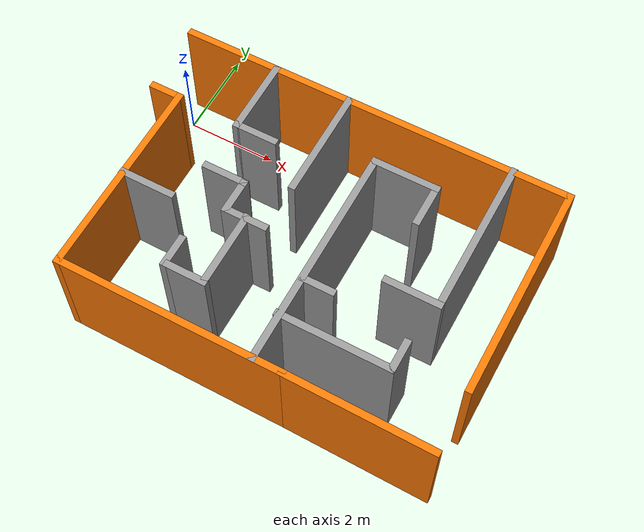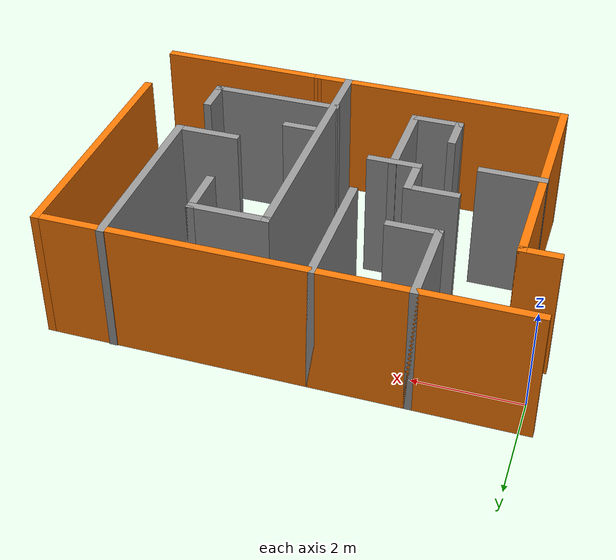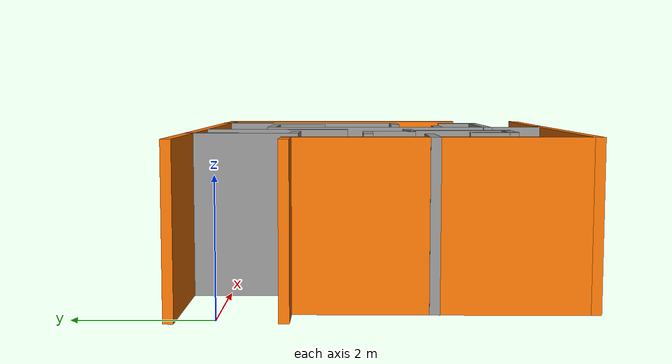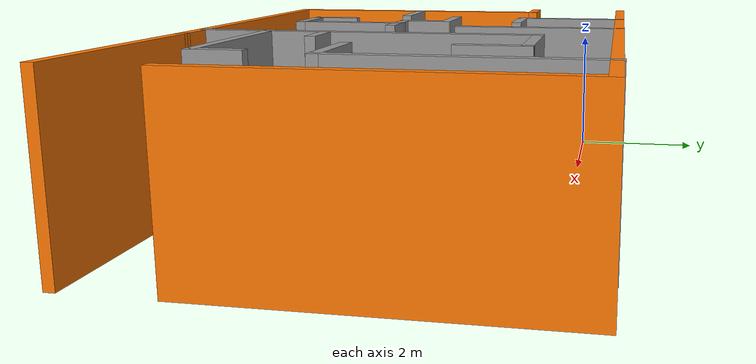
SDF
<?xml version='1.0'?>
<sdf version='1.7'>
  <model name='maze_world'>
    <pose>4.13787 -2.34255 0 0 -0 0</pose>
    <link name='Wall_12'>
      <collision name='Wall_12_Collision'>
        <geometry>
          <box>
            <size>8.75 0.15 2.5</size>
          </box>
        </geometry>
        <pose>0 0 1.25 0 -0 0</pose>
      </collision>
      <visual name='Wall_12_Visual'>
        <pose>0 0 1.25 0 -0 0</pose>
        <geometry>
          <box>
            <size>8.75 0.15 2.5</size>
          </box>
        </geometry>
        <material>
          <script>
            <uri>file://media/materials/scripts/gazebo.material</uri>
            <name>Gazebo/Grey</name>
          </script>
          <ambient>0.996078 0.47451 0.0196078 1</ambient>
        </material>
        <meta>
          <layer>0</layer>
        </meta>
      </visual>
      <pose>-0 2.96607 0 0 -0 0</pose>
    </link>
    <link name='Wall_13'>
      <collision name='Wall_13_Collision'>
        <geometry>
          <box>
            <size>4.75 0.15 2.5</size>
          </box>
        </geometry>
        <pose>0 0 1.25 0 -0 0</pose>
      </collision>
      <visual name='Wall_13_Visual'>
        <pose>0 0 1.25 0 -0 0</pose>
        <geometry>
          <box>
            <size>4.75 0.15 2.5</size>
          </box>
        </geometry>
        <material>
          <script>
            <uri>file://media/materials/scripts/gazebo.material</uri>
            <name>Gazebo/Grey</name>
          </script>
          <ambient>0.996078 0.47451 0.0196078 1</ambient>
        </material>
        <meta>
          <layer>0</layer>
        </meta>
      </visual>
      <pose>4.3 0.666072 0 0 -0 -1.5708</pose>
    </link>
    <link name='Wall_15'>
      <collision name='Wall_15_Collision'>
        <geometry>
          <box>
            <size>1.75 0.15 2.5</size>
          </box>
        </geometry>
        <pose>0 0 1.25 0 -0 0</pose>
      </collision>
      <visual name='Wall_15_Visual'>
        <pose>0 0 1.25 0 -0 0</pose>
        <geometry>
          <box>
            <size>1.75 0.15 2.5</size>
          </box>
        </geometry>
        <material>
          <script>
            <uri>file://media/materials/scripts/gazebo.material</uri>
            <name>Gazebo/Grey</name>
          </script>
          <ambient>0.180392 0.203922 0.211765 1</ambient>
        </material>
        <meta>
          <layer>0</layer>
        </meta>
      </visual>
      <pose>-2.26203 2.16607 0 0 -0 -1.5708</pose>
    </link>
    <link name='Wall_16'>
      <collision name='Wall_16_Collision'>
        <geometry>
          <box>
            <size>1 0.15 2.5</size>
          </box>
        </geometry>
        <pose>0 0 1.25 0 -0 0</pose>
      </collision>
      <visual name='Wall_16_Visual'>
        <pose>0 0 1.25 0 -0 0</pose>
        <geometry>
          <box>
            <size>1 0.15 2.5</size>
          </box>
        </geometry>
        <material>
          <script>
            <uri>file://media/materials/scripts/gazebo.material</uri>
            <name>Gazebo/Grey</name>
          </script>
          <ambient>0.180392 0.203922 0.211765 1</ambient>
        </material>
        <meta>
          <layer>0</layer>
        </meta>
      </visual>
      <pose>-1.83703 1.36607 0 0 -0 0</pose>
    </link>
    <link name='Wall_18'>
      <collision name='Wall_18_Collision'>
        <geometry>
          <box>
            <size>1 0.15 2.5</size>
          </box>
        </geometry>
        <pose>0 0 1.25 0 -0 0</pose>
      </collision>
      <visual name='Wall_18_Visual'>
        <pose>0 0 1.25 0 -0 0</pose>
        <geometry>
          <box>
            <size>1 0.15 2.5</size>
          </box>
        </geometry>
        <material>
          <script>
            <uri>file://media/materials/scripts/gazebo.material</uri>
            <name>Gazebo/Grey</name>
          </script>
          <ambient>0.180392 0.203922 0.211765 1</ambient>
        </material>
        <meta>
          <layer>0</layer>
        </meta>
      </visual>
      <pose>-1.86745 0.228497 0 0 -0 0</pose>
    </link>
    <link name='Wall_19'>
      <collision name='Wall_19_Collision'>
        <geometry>
          <box>
            <size>0.824155 0.15 2.5</size>
          </box>
        </geometry>
        <pose>0 0 1.25 0 -0 0</pose>
      </collision>
      <visual name='Wall_19_Visual'>
        <pose>0 0 1.25 0 -0 0</pose>
        <geometry>
          <box>
            <size>0.824155 0.15 2.5</size>
          </box>
        </geometry>
        <material>
          <script>
            <uri>file://media/materials/scripts/gazebo.material</uri>
            <name>Gazebo/Grey</name>
          </script>
          <ambient>0.180392 0.203922 0.211765 1</ambient>
        </material>
        <meta>
          <layer>0</layer>
        </meta>
      </visual>
      <pose>-1.44245 -0.123789 0 0 -0 -1.5708</pose>
    </link>
    <link name='Wall_20'>
      <collision name='Wall_20_Collision'>
        <geometry>
          <box>
            <size>1 0.15 2.5</size>
          </box>
        </geometry>
        <pose>0 0 1.25 0 -0 0</pose>
      </collision>
      <visual name='Wall_20_Visual'>
        <pose>0 0 1.25 0 -0 0</pose>
        <geometry>
          <box>
            <size>1 0.15 2.5</size>
          </box>
        </geometry>
        <material>
          <script>
            <uri>file://media/materials/scripts/gazebo.material</uri>
            <name>Gazebo/Grey</name>
          </script>
          <ambient>0.180392 0.203922 0.211765 1</ambient>
        </material>
        <meta>
          <layer>0</layer>
        </meta>
      </visual>
      <pose>-1.01745 -0.460867 0 0 -0 0</pose>
    </link>
    <link name='Wall_22'>
      <collision name='Wall_22_Collision'>
        <geometry>
          <box>
            <size>2.5 0.15 2.5</size>
          </box>
        </geometry>
        <pose>0 0 1.25 0 -0 0</pose>
      </collision>
      <visual name='Wall_22_Visual'>
        <pose>0 0 1.25 0 -0 0</pose>
        <geometry>
          <box>
            <size>2.5 0.15 2.5</size>
          </box>
        </geometry>
        <material>
          <script>
            <uri>file://media/materials/scripts/gazebo.material</uri>
            <name>Gazebo/Grey</name>
          </script>
          <ambient>0.180392 0.203922 0.211765 1</ambient>
        </material>
        <meta>
          <layer>0</layer>
        </meta>
      </visual>
      <pose>-0.558648 1.79107 0 0 -0 -1.5708</pose>
    </link>
    <link name='Wall_24'>
      <collision name='Wall_24_Collision'>
        <geometry>
          <box>
            <size>5 0.15 2.5</size>
          </box>
        </geometry>
        <pose>0 0 1.25 0 -0 0</pose>
      </collision>
      <visual name='Wall_24_Visual'>
        <pose>0 0 1.25 0 -0 0</pose>
        <geometry>
          <box>
            <size>5 0.15 2.5</size>
          </box>
        </geometry>
        <material>
          <script>
            <uri>file://media/materials/scripts/gazebo.material</uri>
            <name>Gazebo/Grey</name>
          </script>
          <ambient>0.180392 0.203922 0.211765 1</ambient>
        </material>
        <meta>
          <layer>0</layer>
        </meta>
      </visual>
      <pose>0.582008 -0.525132 0 0 -0 1.5708</pose>
    </link>
    <link name='Wall_25'>
      <collision name='Wall_25_Collision'>
        <geometry>
          <box>
            <size>1.5 0.15 2.5</size>
          </box>
        </geometry>
        <pose>0 0 1.25 0 -0 0</pose>
      </collision>
      <visual name='Wall_25_Visual'>
        <pose>0 0 1.25 0 -0 0</pose>
        <geometry>
          <box>
            <size>1.5 0.15 2.5</size>
          </box>
        </geometry>
        <material>
          <script>
            <uri>file://media/materials/scripts/gazebo.material</uri>
            <name>Gazebo/Grey</name>
          </script>
          <ambient>0.180392 0.203922 0.211765 1</ambient>
        </material>
        <meta>
          <layer>0</layer>
        </meta>
      </visual>
      <pose>1.25701 1.89987 0 0 -0 0</pose>
    </link>
    <link name='Wall_26'>
      <collision name='Wall_26_Collision'>
        <geometry>
          <box>
            <size>1 0.15 2.5</size>
          </box>
        </geometry>
        <pose>0 0 1.25 0 -0 0</pose>
      </collision>
      <visual name='Wall_26_Visual'>
        <pose>0 0 1.25 0 -0 0</pose>
        <geometry>
          <box>
            <size>1 0.15 2.5</size>
          </box>
        </geometry>
        <material>
          <script>
            <uri>file://media/materials/scripts/gazebo.material</uri>
            <name>Gazebo/Grey</name>
          </script>
          <ambient>0.180392 0.203922 0.211765 1</ambient>
        </material>
        <meta>
          <layer>0</layer>
        </meta>
      </visual>
      <pose>1.93201 1.47487 0 0 -0 -1.5708</pose>
    </link>
    <link name='Wall_29'>
      <collision name='Wall_29_Collision'>
        <geometry>
          <box>
            <size>3.5 0.15 2.5</size>
          </box>
        </geometry>
        <pose>0 0 1.25 0 -0 0</pose>
      </collision>
      <visual name='Wall_29_Visual'>
        <pose>0 0 1.25 0 -0 0</pose>
        <geometry>
          <box>
            <size>3.5 0.15 2.5</size>
          </box>
        </geometry>
        <material>
          <script>
            <uri>file://media/materials/scripts/gazebo.material</uri>
            <name>Gazebo/Grey</name>
          </script>
          <ambient>0.180392 0.203922 0.211765 1</ambient>
        </material>
        <meta>
          <layer>0</layer>
        </meta>
      </visual>
      <pose>3.09145 1.30628 0 0 -0 -1.5708</pose>
    </link>
    <link name='Wall_30'>
      <collision name='Wall_30_Collision'>
        <geometry>
          <box>
            <size>1.25 0.15 2.5</size>
          </box>
        </geometry>
        <pose>0 0 1.25 0 -0 0</pose>
      </collision>
      <visual name='Wall_30_Visual'>
        <pose>0 0 1.25 0 -0 0</pose>
        <geometry>
          <box>
            <size>1.25 0.15 2.5</size>
          </box>
        </geometry>
        <material>
          <script>
            <uri>file://media/materials/scripts/gazebo.material</uri>
            <name>Gazebo/Grey</name>
          </script>
          <ambient>0.180392 0.203922 0.211765 1</ambient>
        </material>
        <meta>
          <layer>0</layer>
        </meta>
      </visual>
      <pose>2.54145 -0.368719 0 0 -0 3.14159</pose>
    </link>
    <link name='Wall_32'>
      <collision name='Wall_32_Collision'>
        <geometry>
          <box>
            <size>0.75 0.15 2.5</size>
          </box>
        </geometry>
        <pose>0 0 1.25 0 -0 0</pose>
      </collision>
      <visual name='Wall_32_Visual'>
        <pose>0 0 1.25 0 -0 0</pose>
        <geometry>
          <box>
            <size>0.75 0.15 2.5</size>
          </box>
        </geometry>
        <material>
          <script>
            <uri>file://media/materials/scripts/gazebo.material</uri>
            <name>Gazebo/Grey</name>
          </script>
          <ambient>0.180392 0.203922 0.211765 1</ambient>
        </material>
        <meta>
          <layer>0</layer>
        </meta>
      </visual>
      <pose>0.912426 -1.07946 0 0 -0 0</pose>
    </link>
    <link name='Wall_34'>
      <collision name='Wall_34_Collision'>
        <geometry>
          <box>
            <size>1.25 0.15 2.5</size>
          </box>
        </geometry>
        <pose>0 0 1.25 0 -0 0</pose>
      </collision>
      <visual name='Wall_34_Visual'>
        <pose>0 0 1.25 0 -0 0</pose>
        <geometry>
          <box>
            <size>1.25 0.15 2.5</size>
          </box>
        </geometry>
        <material>
          <script>
            <uri>file://media/materials/scripts/gazebo.material</uri>
            <name>Gazebo/Grey</name>
          </script>
          <ambient>0.180392 0.203922 0.211765 1</ambient>
        </material>
        <meta>
          <layer>0</layer>
        </meta>
      </visual>
      <pose>-3.11123 -0.684028 0 0 -0 0</pose>
    </link>
    <link name='Wall_36'>
      <collision name='Wall_36_Collision'>
        <geometry>
          <box>
            <size>1.75 0.15 2.5</size>
          </box>
        </geometry>
        <pose>0 0 1.25 0 -0 0</pose>
      </collision>
      <visual name='Wall_36_Visual'>
        <pose>0 0 1.25 0 -0 0</pose>
        <geometry>
          <box>
            <size>1.75 0.15 2.5</size>
          </box>
        </geometry>
        <material>
          <script>
            <uri>file://media/materials/scripts/gazebo.material</uri>
            <name>Gazebo/Grey</name>
          </script>
          <ambient>0.180392 0.203922 0.211765 1</ambient>
        </material>
        <meta>
          <layer>0</layer>
        </meta>
      </visual>
      <pose>-0.999702 -1.24069 0 0 -0 -1.5708</pose>
    </link>
    <link name='Wall_37'>
      <collision name='Wall_37_Collision'>
        <geometry>
          <box>
            <size>1 0.15 2.5</size>
          </box>
        </geometry>
        <pose>0 0 1.25 0 -0 0</pose>
      </collision>
      <visual name='Wall_37_Visual'>
        <pose>0 0 1.25 0 -0 0</pose>
        <geometry>
          <box>
            <size>1 0.15 2.5</size>
          </box>
        </geometry>
        <material>
          <script>
            <uri>file://media/materials/scripts/gazebo.material</uri>
            <name>Gazebo/Grey</name>
          </script>
          <ambient>0.180392 0.203922 0.211765 1</ambient>
        </material>
        <meta>
          <layer>0</layer>
        </meta>
      </visual>
      <pose>-1.4247 -2.04069 0 0 -0 3.14159</pose>
    </link>
    <link name='Wall_38'>
      <collision name='Wall_38_Collision'>
        <geometry>
          <box>
            <size>0.75 0.15 2.5</size>
          </box>
        </geometry>
        <pose>0 0 1.25 0 -0 0</pose>
      </collision>
      <visual name='Wall_38_Visual'>
        <pose>0 0 1.25 0 -0 0</pose>
        <geometry>
          <box>
            <size>0.75 0.15 2.5</size>
          </box>
        </geometry>
        <material>
          <script>
            <uri>file://media/materials/scripts/gazebo.material</uri>
            <name>Gazebo/Grey</name>
          </script>
          <ambient>0.180392 0.203922 0.211765 1</ambient>
        </material>
        <meta>
          <layer>0</layer>
        </meta>
      </visual>
      <pose>-1.8497 -1.74069 0 0 -0 1.5708</pose>
    </link>
    <link name='Wall_40'>
      <collision name='Wall_40_Collision'>
        <geometry>
          <box>
            <size>2.5 0.15 2.5</size>
          </box>
        </geometry>
        <pose>0 0 1.25 0 -0 0</pose>
      </collision>
      <visual name='Wall_40_Visual'>
        <pose>0 0 1.25 0 -0 0</pose>
        <geometry>
          <box>
            <size>2.5 0.15 2.5</size>
          </box>
        </geometry>
        <material>
          <script>
            <uri>file://media/materials/scripts/gazebo.material</uri>
            <name>Gazebo/Grey</name>
          </script>
          <ambient>0.180392 0.203922 0.211765 1</ambient>
        </material>
        <meta>
          <layer>0</layer>
        </meta>
      </visual>
      <pose>1.72659 -1.94635 0 0 -0 0</pose>
    </link>
    <link name='Wall_41'>
      <collision name='Wall_41_Collision'>
        <geometry>
          <box>
            <size>0.75 0.15 2.5</size>
          </box>
        </geometry>
        <pose>0 0 1.25 0 -0 0</pose>
      </collision>
      <visual name='Wall_41_Visual'>
        <pose>0 0 1.25 0 -0 0</pose>
        <geometry>
          <box>
            <size>0.75 0.15 2.5</size>
          </box>
        </geometry>
        <material>
          <script>
            <uri>file://media/materials/scripts/gazebo.material</uri>
            <name>Gazebo/Grey</name>
          </script>
          <ambient>0.180392 0.203922 0.211765 1</ambient>
        </material>
        <meta>
          <layer>0</layer>
        </meta>
      </visual>
      <pose>2.90159 -1.64635 0 0 -0 1.5708</pose>
    </link>
    <link name='Wall_5'>
      <collision name='Wall_5_Collision'>
        <geometry>
          <box>
            <size>3.25 0.15 2.5</size>
          </box>
        </geometry>
        <pose>0 0 1.25 0 -0 0</pose>
      </collision>
      <visual name='Wall_5_Visual'>
        <pose>0 0 1.25 0 -0 0</pose>
        <geometry>
          <box>
            <size>3.25 0.15 2.5</size>
          </box>
        </geometry>
        <material>
          <script>
            <uri>file://media/materials/scripts/gazebo.material</uri>
            <name>Gazebo/Grey</name>
          </script>
          <ambient>0.996078 0.47451 0.0196078 1</ambient>
        </material>
        <meta>
          <layer>0</layer>
        </meta>
      </visual>
      <pose>2.74453 -2.96534 0 0 -0 -0.009812</pose>
    </link>
    <link name='Wall_7'>
      <collision name='Wall_7_Collision'>
        <geometry>
          <box>
            <size>5 0.15 2.5</size>
          </box>
        </geometry>
        <pose>0 0 1.25 0 -0 0</pose>
      </collision>
      <visual name='Wall_7_Visual'>
        <pose>0 0 1.25 0 -0 0</pose>
        <geometry>
          <box>
            <size>5 0.15 2.5</size>
          </box>
        </geometry>
        <material>
          <script>
            <uri>file://media/materials/scripts/gazebo.material</uri>
            <name>Gazebo/Grey</name>
          </script>
          <ambient>0.996078 0.47451 0.0196078 1</ambient>
        </material>
        <meta>
          <layer>0</layer>
        </meta>
      </visual>
      <pose>-1.23047 -2.95013 0 0 -0 3.14159</pose>
    </link>
    <link name='Wall_8'>
      <collision name='Wall_8_Collision'>
        <geometry>
          <box>
            <size>4.5 0.15 2.5</size>
          </box>
        </geometry>
        <pose>0 0 1.25 0 -0 0</pose>
      </collision>
      <visual name='Wall_8_Visual'>
        <pose>0 0 1.25 0 -0 0</pose>
        <geometry>
          <box>
            <size>4.5 0.15 2.5</size>
          </box>
        </geometry>
        <material>
          <script>
            <uri>file://media/materials/scripts/gazebo.material</uri>
            <name>Gazebo/Grey</name>
          </script>
          <ambient>0.996078 0.47451 0.0196078 1</ambient>
        </material>
        <meta>
          <layer>0</layer>
        </meta>
      </visual>
      <pose>-3.65547 -0.775132 0 0 -0 1.5708</pose>
    </link>
    <link name='Wall_9'>
      <collision name='Wall_9_Collision'>
        <geometry>
          <box>
            <size>0.75 0.15 2.5</size>
          </box>
        </geometry>
        <pose>0 0 1.25 0 -0 0</pose>
      </collision>
      <visual name='Wall_9_Visual'>
        <pose>0 0 1.25 0 -0 0</pose>
        <geometry>
          <box>
            <size>0.75 0.15 2.5</size>
          </box>
        </geometry>
        <material>
          <script>
            <uri>file://media/materials/scripts/gazebo.material</uri>
            <name>Gazebo/Grey</name>
          </script>
          <ambient>0.996078 0.47451 0.0196078 1</ambient>
        </material>
        <meta>
          <layer>0</layer>
        </meta>
      </visual>
      <pose>-3.95547 1.39987 0 0 -0 3.14159</pose>
    </link>
    <static>1</static>
  </model>
</sdf>
